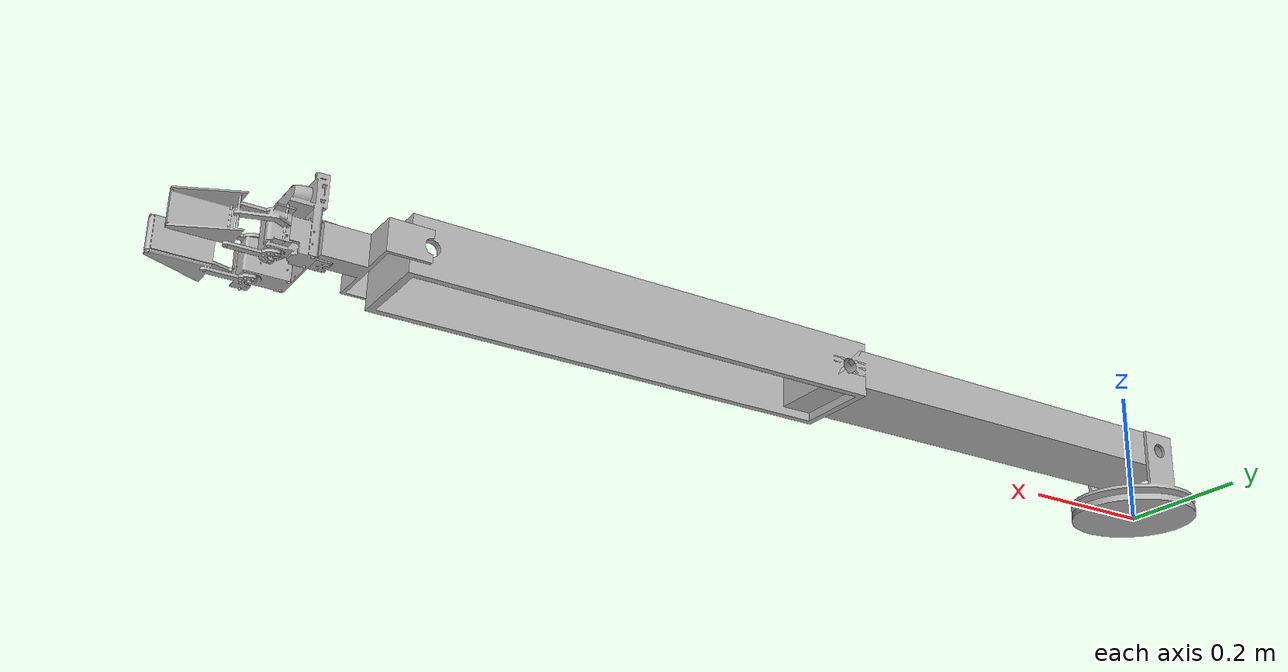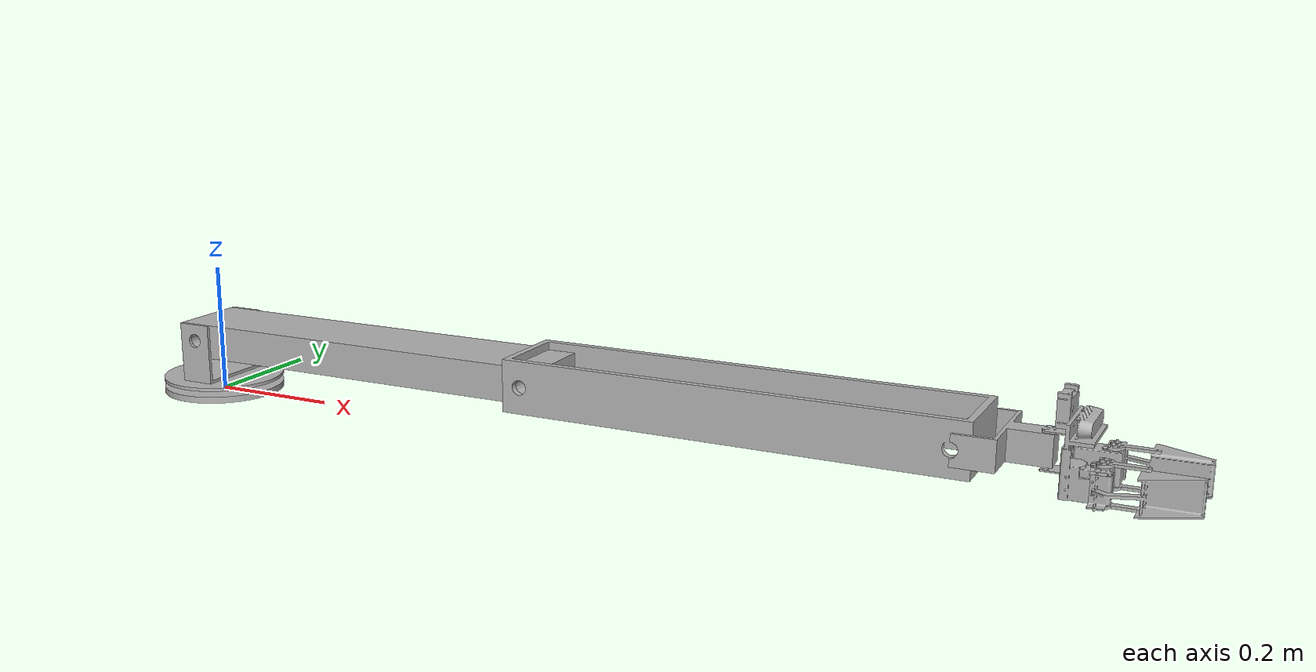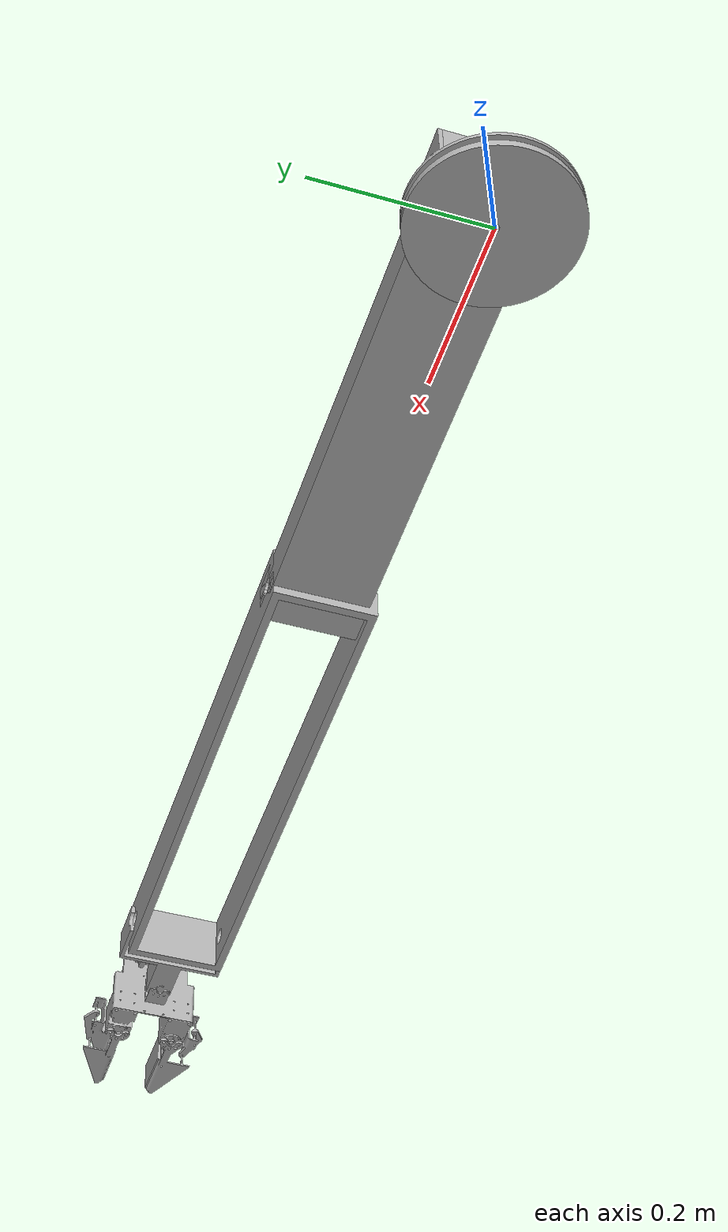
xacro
<?xml version="1.0" ?>
<robot name="simple_arm" xmlns:xacro="http://www.ros.org/wiki/xacro">

<xacro:include filename="$(find simple_arm_description)/urdf/materials.xacro" />
<xacro:include filename="$(find simple_arm_description)/urdf/simple_arm.trans" />
<xacro:include filename="$(find simple_arm_description)/urdf/simple_arm.gazebo" />
<link name="base_link">
  <inertial>
    <origin xyz="1.4475057750305075e-15 1.6083397500338972e-17 0.005" rpy="0 0 0"/>
    <mass value="0.28274333882308134"/>
    <inertia ixx="0.000642" iyy="0.000642" izz="0.001279" ixy="0.0" iyz="0.0" ixz="0.0"/>
  </inertial>
  <visual>
    <origin xyz="0 0 0" rpy="0 0 0"/>
    <geometry>
      <mesh filename="package://simple_arm_description/meshes/base_link.stl" scale="0.001 0.001 0.001"/>
    </geometry>
    <material name="silver"/>
  </visual>
  <collision>
    <origin xyz="0 0 0" rpy="0 0 0"/>
    <geometry>
      <mesh filename="package://simple_arm_description/meshes/base_link.stl" scale="0.001 0.001 0.001"/>
    </geometry>
  </collision>
</link>

<link name="1link_easy_1">
  <inertial>
    <origin xyz="0.2994999999999998 0.059999999999999686 6.195756045712653e-08" rpy="0 0 0"/>
    <mass value="4.140208149339731"/>
    <inertia ixx="0.005994" iyy="0.1432" izz="0.147142" ixy="0.0" iyz="0.0" ixz="0.0"/>
  </inertial>
  <visual>
    <origin xyz="0.0 0.06 -0.092694" rpy="0 0 0"/>
    <geometry>
      <mesh filename="package://simple_arm_description/meshes/1link_easy_1.stl" scale="0.001 0.001 0.001"/>
    </geometry>
    <material name="silver"/>
  </visual>
  <collision>
    <origin xyz="0.0 0.06 -0.092694" rpy="0 0 0"/>
    <geometry>
      <mesh filename="package://simple_arm_description/meshes/1link_easy_1.stl" scale="0.001 0.001 0.001"/>
    </geometry>
  </collision>
</link>

<link name="2link_easy_origin_1">
  <inertial>
    <origin xyz="0.3115000000000001 0.05499999999999975 6.195756020732635e-08" rpy="0 0 0"/>
    <mass value="1.2125146915566287"/>
    <inertia ixx="0.004551" iyy="0.058571" izz="0.061878" ixy="-0.0" iyz="0.0" ixz="-0.0"/>
  </inertial>
  <visual>
    <origin xyz="-0.599 0.06 -0.092694" rpy="0 0 0"/>
    <geometry>
      <mesh filename="package://simple_arm_description/meshes/2link_easy_origin_1.stl" scale="0.001 0.001 0.001"/>
    </geometry>
    <material name="silver"/>
  </visual>
  <collision>
    <origin xyz="-0.599 0.06 -0.092694" rpy="0 0 0"/>
    <geometry>
      <mesh filename="package://simple_arm_description/meshes/2link_easy_origin_1.stl" scale="0.001 0.001 0.001"/>
    </geometry>
  </collision>
</link>

<link name="3link_easy_origin_1">
  <inertial>
    <origin xyz="0.07155327949765633 -0.0649999999999868 6.195756005467068e-08" rpy="0 0 0"/>
    <mass value="0.13898249570993693"/>
    <inertia ixx="0.00018" iyy="0.000122" izz="0.000256" ixy="-0.0" iyz="-0.0" ixz="-0.0"/>
  </inertial>
  <visual>
    <origin xyz="-1.222 -0.06 -0.092694" rpy="0 0 0"/>
    <geometry>
      <mesh filename="package://simple_arm_description/meshes/3link_easy_origin_1.stl" scale="0.001 0.001 0.001"/>
    </geometry>
    <material name="silver"/>
  </visual>
  <collision>
    <origin xyz="-1.222 -0.06 -0.092694" rpy="0 0 0"/>
    <geometry>
      <mesh filename="package://simple_arm_description/meshes/3link_easy_origin_1.stl" scale="0.001 0.001 0.001"/>
    </geometry>
  </collision>
</link>

<link name="hand_link_origin_1">
  <inertial>
    <origin xyz="0.020978724283175376 0.0005364664009915544 -0.024499938042403926" rpy="0 0 0"/>
    <mass value="0.0055574247779607835"/>
    <inertia ixx="3e-06" iyy="3e-06" izz="1e-06" ixy="0.0" iyz="0.0" ixz="-0.0"/>
  </inertial>
  <visual>
    <origin xyz="-1.32525 0.005 -0.114694" rpy="0 0 0"/>
    <geometry>
      <mesh filename="package://simple_arm_description/meshes/hand_link_origin_1.stl" scale="0.001 0.001 0.001"/>
    </geometry>
    <material name="silver"/>
  </visual>
  <collision>
    <origin xyz="-1.32525 0.005 -0.114694" rpy="0 0 0"/>
    <geometry>
      <mesh filename="package://simple_arm_description/meshes/hand_link_origin_1.stl" scale="0.001 0.001 0.001"/>
    </geometry>
  </collision>
</link>

<link name="hands_1">
  <inertial>
    <origin xyz="0.022881928769991955 0.00025674546255615577 -0.0019451195322229137" rpy="0 0 0"/>
    <mass value="0.2695940547225943"/>
    <inertia ixx="0.000629" iyy="0.000393" izz="0.000437" ixy="1e-06" iyz="-8e-06" ixz="8.8e-05"/>
  </inertial>
  <visual>
    <origin xyz="-1.35525 0.0045 -0.090194" rpy="0 0 0"/>
    <geometry>
      <mesh filename="package://simple_arm_description/meshes/hands_1.stl" scale="0.001 0.001 0.001"/>
    </geometry>
    <material name="silver"/>
  </visual>
  <collision>
    <origin xyz="-1.35525 0.0045 -0.090194" rpy="0 0 0"/>
    <geometry>
      <mesh filename="package://simple_arm_description/meshes/hands_1.stl" scale="0.001 0.001 0.001"/>
    </geometry>
  </collision>
</link>

<link name="finger_r_1">
  <inertial>
    <origin xyz="0.05734260879402564 -0.006123273409037622 -0.024501680214445265" rpy="0 0 0"/>
    <mass value="0.034487386604343355"/>
    <inertia ixx="1.9e-05" iyy="5.9e-05" izz="5.4e-05" ixy="-9e-06" iyz="-0.0" ixz="-0.0"/>
  </inertial>
  <visual>
    <origin xyz="-1.402 0.043 -0.091944" rpy="0 0 0"/>
    <geometry>
      <mesh filename="package://simple_arm_description/meshes/finger_r_1.stl" scale="0.001 0.001 0.001"/>
    </geometry>
    <material name="silver"/>
  </visual>
  <collision>
    <origin xyz="-1.402 0.043 -0.091944" rpy="0 0 0"/>
    <geometry>
      <mesh filename="package://simple_arm_description/meshes/finger_r_1.stl" scale="0.001 0.001 0.001"/>
    </geometry>
  </collision>
</link>

<link name="finger_1">
  <inertial>
    <origin xyz="0.05734260879402542 0.006123273409052318 -0.024498195870436695" rpy="0 0 0"/>
    <mass value="0.0344873866043503"/>
    <inertia ixx="1.9e-05" iyy="5.9e-05" izz="5.4e-05" ixy="9e-06" iyz="-0.0" ixz="0.0"/>
  </inertial>
  <visual>
    <origin xyz="-1.402 -0.034 -0.091944" rpy="0 0 0"/>
    <geometry>
      <mesh filename="package://simple_arm_description/meshes/finger_1.stl" scale="0.001 0.001 0.001"/>
    </geometry>
    <material name="silver"/>
  </visual>
  <collision>
    <origin xyz="-1.402 -0.034 -0.091944" rpy="0 0 0"/>
    <geometry>
      <mesh filename="package://simple_arm_description/meshes/finger_1.stl" scale="0.001 0.001 0.001"/>
    </geometry>
  </collision>
</link>

<link name="0link_easy_1">
  <inertial>
    <origin xyz="2.0058434080372222e-14 4.148348331511898e-15 0.02331806213914922" rpy="0 0 0"/>
    <mass value="0.2208776432189984"/>
    <inertia ixx="0.000666" iyy="0.000462" izz="0.000884" ixy="0.0" iyz="0.0" ixz="-0.0"/>
  </inertial>
  <visual>
    <origin xyz="-0.0 -0.0 -0.01" rpy="0 0 0"/>
    <geometry>
      <mesh filename="package://simple_arm_description/meshes/0link_easy_1.stl" scale="0.001 0.001 0.001"/>
    </geometry>
    <material name="silver"/>
  </visual>
  <collision>
    <origin xyz="-0.0 -0.0 -0.01" rpy="0 0 0"/>
    <geometry>
      <mesh filename="package://simple_arm_description/meshes/0link_easy_1.stl" scale="0.001 0.001 0.001"/>
    </geometry>
  </collision>
</link>

<joint name="1" type="continuous">
  <origin xyz="-0.0 -0.06 0.082694" rpy="0 0 0"/>
  <parent link="0link_easy_1"/>
  <child link="1link_easy_1"/>
  <axis xyz="-0.0 -1.0 0.0"/>
</joint>

<joint name="2" type="continuous">
  <origin xyz="0.599 0.0 0.0" rpy="0 0 0"/>
  <parent link="1link_easy_1"/>
  <child link="2link_easy_origin_1"/>
  <axis xyz="0.0 1.0 0.0"/>
</joint>

<joint name="3" type="continuous">
  <origin xyz="0.623 0.12 0.0" rpy="0 0 0"/>
  <parent link="2link_easy_origin_1"/>
  <child link="3link_easy_origin_1"/>
  <axis xyz="0.0 -1.0 -0.0"/>
</joint>

<joint name="4" type="continuous">
  <origin xyz="0.10325 -0.065 0.022" rpy="0 0 0"/>
  <parent link="3link_easy_origin_1"/>
  <child link="hand_link_origin_1"/>
  <axis xyz="-0.0 -0.0 -1.0"/>
</joint>

<joint name="5" type="continuous">
  <origin xyz="0.03 0.0005 -0.0245" rpy="0 0 0"/>
  <parent link="hand_link_origin_1"/>
  <child link="hands_1"/>
  <axis xyz="-1.0 -0.0 -0.0"/>
</joint>

<joint name="6" type="continuous">
  <origin xyz="0.04675 -0.0385 0.00175" rpy="0 0 0"/>
  <parent link="hands_1"/>
  <child link="finger_r_1"/>
  <axis xyz="0.0 -0.0 -1.0"/>
</joint>

<joint name="7" type="continuous">
  <origin xyz="0.04675 0.0385 0.00175" rpy="0 0 0"/>
  <parent link="hands_1"/>
  <child link="finger_1"/>
  <axis xyz="-0.0 0.0 1.0"/>
</joint>

<joint name="8" type="continuous">
  <origin xyz="0.0 0.0 0.01" rpy="0 0 0"/>
  <parent link="base_link"/>
  <child link="0link_easy_1"/>
  <axis xyz="0.0 0.0 -1.0"/>
</joint>

</robot>

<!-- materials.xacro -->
<robot name="simple_arm" xmlns:xacro="http://www.ros.org/wiki/xacro" >

<material name="silver">
  <color rgba="0.700 0.700 0.700 1.000"/>
</material>

</robot>

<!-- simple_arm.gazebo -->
<robot name="simple_arm" xmlns:xacro="http://www.ros.org/wiki/xacro" >

<xacro:property name="body_color" value="Gazebo/Silver" />

<gazebo>
  <plugin name="control" filename="libgazebo_ros_control.so"/>
</gazebo>
<gazebo reference="base_link">
  <material>${body_color}</material>
  <mu1>0.2</mu1>
  <mu2>0.2</mu2>
  <selfCollide>true</selfCollide>
  <gravity>true</gravity>
</gazebo>

<gazebo reference="1link_easy_1">
  <material>${body_color}</material>
  <mu1>0.2</mu1>
  <mu2>0.2</mu2>
  <selfCollide>true</selfCollide>
</gazebo>

<gazebo reference="2link_easy_origin_1">
  <material>${body_color}</material>
  <mu1>0.2</mu1>
  <mu2>0.2</mu2>
  <selfCollide>true</selfCollide>
</gazebo>

<gazebo reference="3link_easy_origin_1">
  <material>${body_color}</material>
  <mu1>0.2</mu1>
  <mu2>0.2</mu2>
  <selfCollide>true</selfCollide>
</gazebo>

<gazebo reference="hand_link_origin_1">
  <material>${body_color}</material>
  <mu1>0.2</mu1>
  <mu2>0.2</mu2>
  <selfCollide>true</selfCollide>
</gazebo>

<gazebo reference="hands_1">
  <material>${body_color}</material>
  <mu1>0.2</mu1>
  <mu2>0.2</mu2>
  <selfCollide>true</selfCollide>
</gazebo>

<gazebo reference="finger_r_1">
  <material>${body_color}</material>
  <mu1>0.2</mu1>
  <mu2>0.2</mu2>
  <selfCollide>true</selfCollide>
</gazebo>

<gazebo reference="finger_1">
  <material>${body_color}</material>
  <mu1>0.2</mu1>
  <mu2>0.2</mu2>
  <selfCollide>true</selfCollide>
</gazebo>

<gazebo reference="0link_easy_1">
  <material>${body_color}</material>
  <mu1>0.2</mu1>
  <mu2>0.2</mu2>
  <selfCollide>true</selfCollide>
</gazebo>

</robot>
